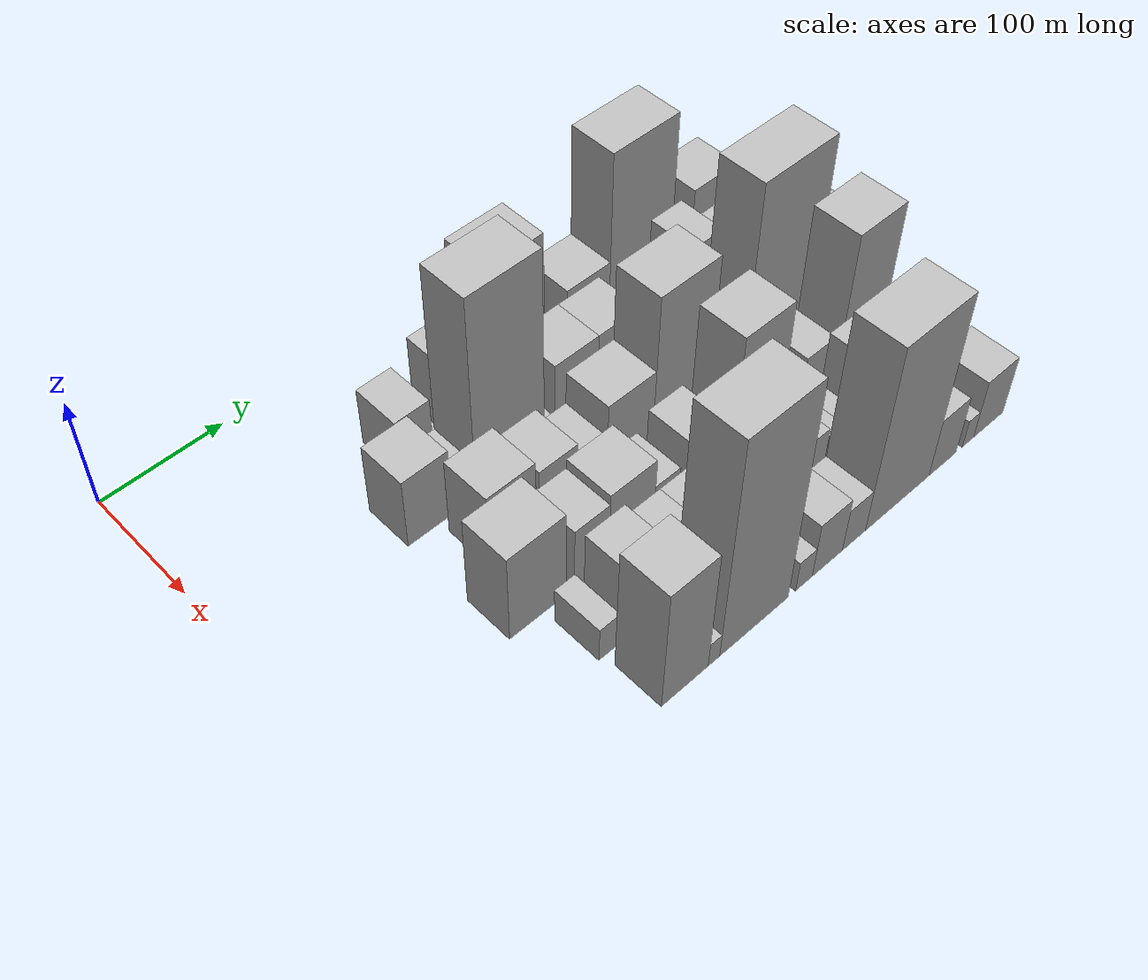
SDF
<sdf version="1.6">
 <world name="default">
  <model name="building_29">
   <static>1</static>
   <pose>100.0000 175.4922 0 0.000000 0.000000 0.000000</pose>
   <link name="link">
    <pose>0 0 27.00 0 0 0</pose>
    <collision name="collision"><geometry><box><size>40.0000 29.8753 54.0000</size></box></geometry></collision>
    <visual name="visual">
     <cast_shadows>0</cast_shadows>
     <geometry><box><size>40.0000 29.8753 54.0000</size></box></geometry>
     <material>
      <script>
       <uri>model://HANNAS_wall/materials/scripts</uri>
       <uri>model://HANNAS_wall/materials/textures</uri>
       <name>vrc/HANNAS_wall</name>
      </script>
     </material>
    </visual>
   </link>
  </model>
  <model name="building_30">
   <static>1</static>
   <pose>100.0000 194.1255 0 0.000000 0.000000 0.000000</pose>
   <link name="link">
    <pose>0 0 9.00 0 0 0</pose>
    <collision name="collision"><geometry><box><size>40.0000 7.3911 18.0000</size></box></geometry></collision>
    <visual name="visual">
     <cast_shadows>0</cast_shadows>
     <geometry><box><size>40.0000 7.3911 18.0000</size></box></geometry>
     <material>
      <script>
       <uri>model://HANNAS_wall/materials/scripts</uri>
       <uri>model://HANNAS_wall/materials/textures</uri>
       <name>vrc/HANNAS_wall</name>
      </script>
     </material>
    </visual>
   </link>
  </model>
  <model name="building_31">
   <static>1</static>
   <pose>100.0000 224.5642 0 0.000000 0.000000 0.000000</pose>
   <link name="link">
    <pose>0 0 36.00 0 0 0</pose>
    <collision name="collision"><geometry><box><size>40.0000 37.4863 72.0000</size></box></geometry></collision>
    <visual name="visual">
     <cast_shadows>0</cast_shadows>
     <geometry><box><size>40.0000 37.4863 72.0000</size></box></geometry>
     <material>
      <script>
       <uri>model://HANNAS_wall/materials/scripts</uri>
       <uri>model://HANNAS_wall/materials/textures</uri>
       <name>vrc/HANNAS_wall</name>
      </script>
     </material>
    </visual>
   </link>
  </model>
  <model name="building_32">
   <static>1</static>
   <pose>100.0000 268.6957 0 0.000000 0.000000 0.000000</pose>
   <link name="link">
    <pose>0 0 69.00 0 0 0</pose>
    <collision name="collision"><geometry><box><size>40.0000 50.7767 138.0000</size></box></geometry></collision>
    <visual name="visual">
     <cast_shadows>0</cast_shadows>
     <geometry><box><size>40.0000 50.7767 138.0000</size></box></geometry>
     <material>
      <script>
       <uri>model://HANNAS_wall/materials/scripts</uri>
       <uri>model://HANNAS_wall/materials/textures</uri>
       <name>vrc/HANNAS_wall</name>
      </script>
     </material>
    </visual>
   </link>
  </model>
  <model name="building_33">
   <static>1</static>
   <pose>100.0000 305.9809 0 0.000000 0.000000 0.000000</pose>
   <link name="link">
    <pose>0 0 12.00 0 0 0</pose>
    <collision name="collision"><geometry><box><size>40.0000 9.7936 24.0000</size></box></geometry></collision>
    <visual name="visual">
     <cast_shadows>0</cast_shadows>
     <geometry><box><size>40.0000 9.7936 24.0000</size></box></geometry>
     <material>
      <script>
       <uri>model://HANNAS_wall/materials/scripts</uri>
       <uri>model://HANNAS_wall/materials/textures</uri>
       <name>vrc/HANNAS_wall</name>
      </script>
     </material>
    </visual>
   </link>
  </model>
  <model name="building_34">
   <static>1</static>
   <pose>100.0000 336.5468 0 0.000000 0.000000 0.000000</pose>
   <link name="link">
    <pose>0 0 34.50 0 0 0</pose>
    <collision name="collision"><geometry><box><size>40.0000 41.3381 69.0000</size></box></geometry></collision>
    <visual name="visual">
     <cast_shadows>0</cast_shadows>
     <geometry><box><size>40.0000 41.3381 69.0000</size></box></geometry>
     <material>
      <script>
       <uri>model://HANNAS_wall/materials/scripts</uri>
       <uri>model://HANNAS_wall/materials/textures</uri>
       <name>vrc/HANNAS_wall</name>
      </script>
     </material>
    </visual>
   </link>
  </model>
  <model name="building_35">
   <static>1</static>
   <pose>100.0000 388.4711 0 0.000000 0.000000 0.000000</pose>
   <link name="link">
    <pose>0 0 84.00 0 0 0</pose>
    <collision name="collision"><geometry><box><size>40.0000 62.5105 168.0000</size></box></geometry></collision>
    <visual name="visual">
     <cast_shadows>0</cast_shadows>
     <geometry><box><size>40.0000 62.5105 168.0000</size></box></geometry>
     <material>
      <script>
       <uri>model://HANNAS_wall/materials/scripts</uri>
       <uri>model://HANNAS_wall/materials/textures</uri>
       <name>vrc/HANNAS_wall</name>
      </script>
     </material>
    </visual>
   </link>
  </model>
  <model name="building_36">
   <static>1</static>
   <pose>100.0000 430.7072 0 0.000000 0.000000 0.000000</pose>
   <link name="link">
    <pose>0 0 21.00 0 0 0</pose>
    <collision name="collision"><geometry><box><size>40.0000 21.9616 42.0000</size></box></geometry></collision>
    <visual name="visual">
     <cast_shadows>0</cast_shadows>
     <geometry><box><size>40.0000 21.9616 42.0000</size></box></geometry>
     <material>
      <script>
       <uri>model://HANNAS_wall/materials/scripts</uri>
       <uri>model://HANNAS_wall/materials/textures</uri>
       <name>vrc/HANNAS_wall</name>
      </script>
     </material>
    </visual>
   </link>
  </model>
  <model name="building_37">
   <static>1</static>
   <pose>100.0000 463.8221 0 0.000000 0.000000 0.000000</pose>
   <link name="link">
    <pose>0 0 42.00 0 0 0</pose>
    <collision name="collision"><geometry><box><size>40.0000 44.2683 84.0000</size></box></geometry></collision>
    <visual name="visual">
     <cast_shadows>0</cast_shadows>
     <geometry><box><size>40.0000 44.2683 84.0000</size></box></geometry>
     <material>
      <script>
       <uri>model://HANNAS_wall/materials/scripts</uri>
       <uri>model://HANNAS_wall/materials/textures</uri>
       <name>vrc/HANNAS_wall</name>
      </script>
     </material>
    </visual>
   </link>
  </model>
  <model name="building_75">
   <static>1</static>
   <pose>149.0000 146.1290 0 0.000000 0.000000 0.000000</pose>
   <link name="link">
    <pose>0 0 33.00 0 0 0</pose>
    <collision name="collision"><geometry><box><size>40.0000 38.1017 66.0000</size></box></geometry></collision>
    <visual name="visual">
     <cast_shadows>0</cast_shadows>
     <geometry><box><size>40.0000 38.1017 66.0000</size></box></geometry>
     <material>
      <script>
       <uri>model://HANNAS_wall/materials/scripts</uri>
       <uri>model://HANNAS_wall/materials/textures</uri>
       <name>vrc/HANNAS_wall</name>
      </script>
     </material>
    </visual>
   </link>
  </model>
  <model name="building_76">
   <static>1</static>
   <pose>149.0000 175.5447 0 0.000000 0.000000 0.000000</pose>
   <link name="link">
    <pose>0 0 18.00 0 0 0</pose>
    <collision name="collision"><geometry><box><size>40.0000 20.7296 36.0000</size></box></geometry></collision>
    <visual name="visual">
     <cast_shadows>0</cast_shadows>
     <geometry><box><size>40.0000 20.7296 36.0000</size></box></geometry>
     <material>
      <script>
       <uri>model://HANNAS_wall/materials/scripts</uri>
       <uri>model://HANNAS_wall/materials/textures</uri>
       <name>vrc/HANNAS_wall</name>
      </script>
     </material>
    </visual>
   </link>
  </model>
  <model name="building_77">
   <static>1</static>
   <pose>149.0000 217.0805 0 0.000000 0.000000 0.000000</pose>
   <link name="link">
    <pose>0 0 94.50 0 0 0</pose>
    <collision name="collision"><geometry><box><size>40.0000 62.3419 189.0000</size></box></geometry></collision>
    <visual name="visual">
     <cast_shadows>0</cast_shadows>
     <geometry><box><size>40.0000 62.3419 189.0000</size></box></geometry>
     <material>
      <script>
       <uri>model://HANNAS_wall/materials/scripts</uri>
       <uri>model://HANNAS_wall/materials/textures</uri>
       <name>vrc/HANNAS_wall</name>
      </script>
     </material>
    </visual>
   </link>
  </model>
  <model name="building_78">
   <static>1</static>
   <pose>149.0000 253.2809 0 0.000000 0.000000 0.000000</pose>
   <link name="link">
    <pose>0 0 12.00 0 0 0</pose>
    <collision name="collision"><geometry><box><size>40.0000 10.0589 24.0000</size></box></geometry></collision>
    <visual name="visual">
     <cast_shadows>0</cast_shadows>
     <geometry><box><size>40.0000 10.0589 24.0000</size></box></geometry>
     <material>
      <script>
       <uri>model://HANNAS_wall/materials/scripts</uri>
       <uri>model://HANNAS_wall/materials/textures</uri>
       <name>vrc/HANNAS_wall</name>
      </script>
     </material>
    </visual>
   </link>
  </model>
  <model name="building_79">
   <static>1</static>
   <pose>149.0000 278.5156 0 0.000000 0.000000 0.000000</pose>
   <link name="link">
    <pose>0 0 37.50 0 0 0</pose>
    <collision name="collision"><geometry><box><size>40.0000 40.4105 75.0000</size></box></geometry></collision>
    <visual name="visual">
     <cast_shadows>0</cast_shadows>
     <geometry><box><size>40.0000 40.4105 75.0000</size></box></geometry>
     <material>
      <script>
       <uri>model://HANNAS_wall/materials/scripts</uri>
       <uri>model://HANNAS_wall/materials/textures</uri>
       <name>vrc/HANNAS_wall</name>
      </script>
     </material>
    </visual>
   </link>
  </model>
  <model name="building_80">
   <static>1</static>
   <pose>149.0000 317.9663 0 0.000000 0.000000 0.000000</pose>
   <link name="link">
    <pose>0 0 37.50 0 0 0</pose>
    <collision name="collision"><geometry><box><size>40.0000 38.4909 75.0000</size></box></geometry></collision>
    <visual name="visual">
     <cast_shadows>0</cast_shadows>
     <geometry><box><size>40.0000 38.4909 75.0000</size></box></geometry>
     <material>
      <script>
       <uri>model://HANNAS_wall/materials/scripts</uri>
       <uri>model://HANNAS_wall/materials/textures</uri>
       <name>vrc/HANNAS_wall</name>
      </script>
     </material>
    </visual>
   </link>
  </model>
  <model name="building_81">
   <static>1</static>
   <pose>149.0000 349.7868 0 0.000000 0.000000 0.000000</pose>
   <link name="link">
    <pose>0 0 15.00 0 0 0</pose>
    <collision name="collision"><geometry><box><size>40.0000 17.1501 30.0000</size></box></geometry></collision>
    <visual name="visual">
     <cast_shadows>0</cast_shadows>
     <geometry><box><size>40.0000 17.1501 30.0000</size></box></geometry>
     <material>
      <script>
       <uri>model://HANNAS_wall/materials/scripts</uri>
       <uri>model://HANNAS_wall/materials/textures</uri>
       <name>vrc/HANNAS_wall</name>
      </script>
     </material>
    </visual>
   </link>
  </model>
  <model name="building_82">
   <static>1</static>
   <pose>149.0000 370.7716 0 0.000000 0.000000 0.000000</pose>
   <link name="link">
    <pose>0 0 22.50 0 0 0</pose>
    <collision name="collision"><geometry><box><size>40.0000 24.8196 45.0000</size></box></geometry></collision>
    <visual name="visual">
     <cast_shadows>0</cast_shadows>
     <geometry><box><size>40.0000 24.8196 45.0000</size></box></geometry>
     <material>
      <script>
       <uri>model://HANNAS_wall/materials/scripts</uri>
       <uri>model://HANNAS_wall/materials/textures</uri>
       <name>vrc/HANNAS_wall</name>
      </script>
     </material>
    </visual>
   </link>
  </model>
  <model name="building_83">
   <static>1</static>
   <pose>149.0000 402.2348 0 0.000000 0.000000 0.000000</pose>
   <link name="link">
    <pose>0 0 48.00 0 0 0</pose>
    <collision name="collision"><geometry><box><size>40.0000 30.1068 96.0000</size></box></geometry></collision>
    <visual name="visual">
     <cast_shadows>0</cast_shadows>
     <geometry><box><size>40.0000 30.1068 96.0000</size></box></geometry>
     <material>
      <script>
       <uri>model://HANNAS_wall/materials/scripts</uri>
       <uri>model://HANNAS_wall/materials/textures</uri>
       <name>vrc/HANNAS_wall</name>
      </script>
     </material>
    </visual>
   </link>
  </model>
  <model name="building_84">
   <static>1</static>
   <pose>149.0000 436.6969 0 0.000000 0.000000 0.000000</pose>
   <link name="link">
    <pose>0 0 34.50 0 0 0</pose>
    <collision name="collision"><geometry><box><size>40.0000 38.8174 69.0000</size></box></geometry></collision>
    <visual name="visual">
     <cast_shadows>0</cast_shadows>
     <geometry><box><size>40.0000 38.8174 69.0000</size></box></geometry>
     <material>
      <script>
       <uri>model://HANNAS_wall/materials/scripts</uri>
       <uri>model://HANNAS_wall/materials/textures</uri>
       <name>vrc/HANNAS_wall</name>
      </script>
     </material>
    </visual>
   </link>
  </model>
  <model name="building_85">
   <static>1</static>
   <pose>149.0000 477.1022 0 0.000000 0.000000 0.000000</pose>
   <link name="link">
    <pose>0 0 58.50 0 0 0</pose>
    <collision name="collision"><geometry><box><size>40.0000 41.9933 117.0000</size></box></geometry></collision>
    <visual name="visual">
     <cast_shadows>0</cast_shadows>
     <geometry><box><size>40.0000 41.9933 117.0000</size></box></geometry>
     <material>
      <script>
       <uri>model://HANNAS_wall/materials/scripts</uri>
       <uri>model://HANNAS_wall/materials/textures</uri>
       <name>vrc/HANNAS_wall</name>
      </script>
     </material>
    </visual>
   </link>
  </model>
  <model name="building_130">
   <static>1</static>
   <pose>198.0000 175.0927 0 0.000000 0.000000 0.000000</pose>
   <link name="link">
    <pose>0 0 36.00 0 0 0</pose>
    <collision name="collision"><geometry><box><size>40.0000 41.2063 72.0000</size></box></geometry></collision>
    <visual name="visual">
     <cast_shadows>0</cast_shadows>
     <geometry><box><size>40.0000 41.2063 72.0000</size></box></geometry>
     <material>
      <script>
       <uri>model://HANNAS_wall/materials/scripts</uri>
       <uri>model://HANNAS_wall/materials/textures</uri>
       <name>vrc/HANNAS_wall</name>
      </script>
     </material>
    </visual>
   </link>
  </model>
  <model name="building_131">
   <static>1</static>
   <pose>198.0000 215.7154 0 0.000000 0.000000 0.000000</pose>
   <link name="link">
    <pose>0 0 30.00 0 0 0</pose>
    <collision name="collision"><geometry><box><size>40.0000 34.0390 60.0000</size></box></geometry></collision>
    <visual name="visual">
     <cast_shadows>0</cast_shadows>
     <geometry><box><size>40.0000 34.0390 60.0000</size></box></geometry>
     <material>
      <script>
       <uri>model://HANNAS_wall/materials/scripts</uri>
       <uri>model://HANNAS_wall/materials/textures</uri>
       <name>vrc/HANNAS_wall</name>
      </script>
     </material>
    </visual>
   </link>
  </model>
  <model name="building_132">
   <static>1</static>
   <pose>198.0000 246.1896 0 0.000000 0.000000 0.000000</pose>
   <link name="link">
    <pose>0 0 22.50 0 0 0</pose>
    <collision name="collision"><geometry><box><size>40.0000 26.9094 45.0000</size></box></geometry></collision>
    <visual name="visual">
     <cast_shadows>0</cast_shadows>
     <geometry><box><size>40.0000 26.9094 45.0000</size></box></geometry>
     <material>
      <script>
       <uri>model://HANNAS_wall/materials/scripts</uri>
       <uri>model://HANNAS_wall/materials/textures</uri>
       <name>vrc/HANNAS_wall</name>
      </script>
     </material>
    </visual>
   </link>
  </model>
  <model name="building_133">
   <static>1</static>
   <pose>198.0000 281.5165 0 0.000000 0.000000 0.000000</pose>
   <link name="link">
    <pose>0 0 37.50 0 0 0</pose>
    <collision name="collision"><geometry><box><size>40.0000 43.7444 75.0000</size></box></geometry></collision>
    <visual name="visual">
     <cast_shadows>0</cast_shadows>
     <geometry><box><size>40.0000 43.7444 75.0000</size></box></geometry>
     <material>
      <script>
       <uri>model://HANNAS_wall/materials/scripts</uri>
       <uri>model://HANNAS_wall/materials/textures</uri>
       <name>vrc/HANNAS_wall</name>
      </script>
     </material>
    </visual>
   </link>
  </model>
  <model name="building_134">
   <static>1</static>
   <pose>198.0000 331.0666 0 0.000000 0.000000 0.000000</pose>
   <link name="link">
    <pose>0 0 72.00 0 0 0</pose>
    <collision name="collision"><geometry><box><size>40.0000 55.3558 144.0000</size></box></geometry></collision>
    <visual name="visual">
     <cast_shadows>0</cast_shadows>
     <geometry><box><size>40.0000 55.3558 144.0000</size></box></geometry>
     <material>
      <script>
       <uri>model://HANNAS_wall/materials/scripts</uri>
       <uri>model://HANNAS_wall/materials/textures</uri>
       <name>vrc/HANNAS_wall</name>
      </script>
     </material>
    </visual>
   </link>
  </model>
  <model name="building_135">
   <static>1</static>
   <pose>198.0000 381.5912 0 0.000000 0.000000 0.000000</pose>
   <link name="link">
    <pose>0 0 24.00 0 0 0</pose>
    <collision name="collision"><geometry><box><size>40.0000 25.6934 48.0000</size></box></geometry></collision>
    <visual name="visual">
     <cast_shadows>0</cast_shadows>
     <geometry><box><size>40.0000 25.6934 48.0000</size></box></geometry>
     <material>
      <script>
       <uri>model://HANNAS_wall/materials/scripts</uri>
       <uri>model://HANNAS_wall/materials/textures</uri>
       <name>vrc/HANNAS_wall</name>
      </script>
     </material>
    </visual>
   </link>
  </model>
  <model name="building_136">
   <static>1</static>
   <pose>198.0000 430.0439 0 0.000000 0.000000 0.000000</pose>
   <link name="link">
    <pose>0 0 91.50 0 0 0</pose>
    <collision name="collision"><geometry><box><size>40.0000 71.2120 183.0000</size></box></geometry></collision>
    <visual name="visual">
     <cast_shadows>0</cast_shadows>
     <geometry><box><size>40.0000 71.2120 183.0000</size></box></geometry>
     <material>
      <script>
       <uri>model://HANNAS_wall/materials/scripts</uri>
       <uri>model://HANNAS_wall/materials/textures</uri>
       <name>vrc/HANNAS_wall</name>
      </script>
     </material>
    </visual>
   </link>
  </model>
  <model name="building_137">
   <static>1</static>
   <pose>198.0000 479.1458 0 0.000000 0.000000 0.000000</pose>
   <link name="link">
    <pose>0 0 7.50 0 0 0</pose>
    <collision name="collision"><geometry><box><size>40.0000 6.9918 15.0000</size></box></geometry></collision>
    <visual name="visual">
     <cast_shadows>0</cast_shadows>
     <geometry><box><size>40.0000 6.9918 15.0000</size></box></geometry>
     <material>
      <script>
       <uri>model://HANNAS_wall/materials/scripts</uri>
       <uri>model://HANNAS_wall/materials/textures</uri>
       <name>vrc/HANNAS_wall</name>
      </script>
     </material>
    </visual>
   </link>
  </model>
  <model name="building_138">
   <static>1</static>
   <pose>198.0000 502.6794 0 0.000000 0.000000 0.000000</pose>
   <link name="link">
    <pose>0 0 37.50 0 0 0</pose>
    <collision name="collision"><geometry><box><size>40.0000 40.0754 75.0000</size></box></geometry></collision>
    <visual name="visual">
     <cast_shadows>0</cast_shadows>
     <geometry><box><size>40.0000 40.0754 75.0000</size></box></geometry>
     <material>
      <script>
       <uri>model://HANNAS_wall/materials/scripts</uri>
       <uri>model://HANNAS_wall/materials/textures</uri>
       <name>vrc/HANNAS_wall</name>
      </script>
     </material>
    </visual>
   </link>
  </model>
  <model name="building_180">
   <static>1</static>
   <pose>247.0000 151.8714 0 0.000000 0.000000 0.000000</pose>
   <link name="link">
    <pose>0 0 42.00 0 0 0</pose>
    <collision name="collision"><geometry><box><size>40.0000 48.5519 84.0000</size></box></geometry></collision>
    <visual name="visual">
     <cast_shadows>0</cast_shadows>
     <geometry><box><size>40.0000 48.5519 84.0000</size></box></geometry>
     <material>
      <script>
       <uri>model://HANNAS_wall/materials/scripts</uri>
       <uri>model://HANNAS_wall/materials/textures</uri>
       <name>vrc/HANNAS_wall</name>
      </script>
     </material>
    </visual>
   </link>
  </model>
  <model name="building_181">
   <static>1</static>
   <pose>247.0000 198.4204 0 0.000000 0.000000 0.000000</pose>
   <link name="link">
    <pose>0 0 30.00 0 0 0</pose>
    <collision name="collision"><geometry><box><size>40.0000 30.5460 60.0000</size></box></geometry></collision>
    <visual name="visual">
     <cast_shadows>0</cast_shadows>
     <geometry><box><size>40.0000 30.5460 60.0000</size></box></geometry>
     <material>
      <script>
       <uri>model://HANNAS_wall/materials/scripts</uri>
       <uri>model://HANNAS_wall/materials/textures</uri>
       <name>vrc/HANNAS_wall</name>
      </script>
     </material>
    </visual>
   </link>
  </model>
  <model name="building_182">
   <static>1</static>
   <pose>247.0000 234.1974 0 0.000000 0.000000 0.000000</pose>
   <link name="link">
    <pose>0 0 34.50 0 0 0</pose>
    <collision name="collision"><geometry><box><size>40.0000 41.0079 69.0000</size></box></geometry></collision>
    <visual name="visual">
     <cast_shadows>0</cast_shadows>
     <geometry><box><size>40.0000 41.0079 69.0000</size></box></geometry>
     <material>
      <script>
       <uri>model://HANNAS_wall/materials/scripts</uri>
       <uri>model://HANNAS_wall/materials/textures</uri>
       <name>vrc/HANNAS_wall</name>
      </script>
     </material>
    </visual>
   </link>
  </model>
  <model name="building_183">
   <static>1</static>
   <pose>247.0000 266.2529 0 0.000000 0.000000 0.000000</pose>
   <link name="link">
    <pose>0 0 21.00 0 0 0</pose>
    <collision name="collision"><geometry><box><size>40.0000 23.1032 42.0000</size></box></geometry></collision>
    <visual name="visual">
     <cast_shadows>0</cast_shadows>
     <geometry><box><size>40.0000 23.1032 42.0000</size></box></geometry>
     <material>
      <script>
       <uri>model://HANNAS_wall/materials/scripts</uri>
       <uri>model://HANNAS_wall/materials/textures</uri>
       <name>vrc/HANNAS_wall</name>
      </script>
     </material>
    </visual>
   </link>
  </model>
  <model name="building_184">
   <static>1</static>
   <pose>247.0000 303.8590 0 0.000000 0.000000 0.000000</pose>
   <link name="link">
    <pose>0 0 28.50 0 0 0</pose>
    <collision name="collision"><geometry><box><size>40.0000 32.1091 57.0000</size></box></geometry></collision>
    <visual name="visual">
     <cast_shadows>0</cast_shadows>
     <geometry><box><size>40.0000 32.1091 57.0000</size></box></geometry>
     <material>
      <script>
       <uri>model://HANNAS_wall/materials/scripts</uri>
       <uri>model://HANNAS_wall/materials/textures</uri>
       <name>vrc/HANNAS_wall</name>
      </script>
     </material>
    </visual>
   </link>
  </model>
  <model name="building_185">
   <static>1</static>
   <pose>247.0000 353.5766 0 0.000000 0.000000 0.000000</pose>
   <link name="link">
    <pose>0 0 63.00 0 0 0</pose>
    <collision name="collision"><geometry><box><size>40.0000 47.3261 126.0000</size></box></geometry></collision>
    <visual name="visual">
     <cast_shadows>0</cast_shadows>
     <geometry><box><size>40.0000 47.3261 126.0000</size></box></geometry>
     <material>
      <script>
       <uri>model://HANNAS_wall/materials/scripts</uri>
       <uri>model://HANNAS_wall/materials/textures</uri>
       <name>vrc/HANNAS_wall</name>
      </script>
     </material>
    </visual>
   </link>
  </model>
  <model name="building_186">
   <static>1</static>
   <pose>247.0000 391.2234 0 0.000000 0.000000 0.000000</pose>
   <link name="link">
    <pose>0 0 12.00 0 0 0</pose>
    <collision name="collision"><geometry><box><size>40.0000 9.9675 24.0000</size></box></geometry></collision>
    <visual name="visual">
     <cast_shadows>0</cast_shadows>
     <geometry><box><size>40.0000 9.9675 24.0000</size></box></geometry>
     <material>
      <script>
       <uri>model://HANNAS_wall/materials/scripts</uri>
       <uri>model://HANNAS_wall/materials/textures</uri>
       <name>vrc/HANNAS_wall</name>
      </script>
     </material>
    </visual>
   </link>
  </model>
  <model name="building_187">
   <static>1</static>
   <pose>247.0000 414.9449 0 0.000000 0.000000 0.000000</pose>
   <link name="link">
    <pose>0 0 27.00 0 0 0</pose>
    <collision name="collision"><geometry><box><size>40.0000 29.4754 54.0000</size></box></geometry></collision>
    <visual name="visual">
     <cast_shadows>0</cast_shadows>
     <geometry><box><size>40.0000 29.4754 54.0000</size></box></geometry>
     <material>
      <script>
       <uri>model://HANNAS_wall/materials/scripts</uri>
       <uri>model://HANNAS_wall/materials/textures</uri>
       <name>vrc/HANNAS_wall</name>
      </script>
     </material>
    </visual>
   </link>
  </model>
  <model name="building_188">
   <static>1</static>
   <pose>247.0000 433.3512 0 0.000000 0.000000 0.000000</pose>
   <link name="link">
    <pose>0 0 7.50 0 0 0</pose>
    <collision name="collision"><geometry><box><size>40.0000 7.3372 15.0000</size></box></geometry></collision>
    <visual name="visual">
     <cast_shadows>0</cast_shadows>
     <geometry><box><size>40.0000 7.3372 15.0000</size></box></geometry>
     <material>
      <script>
       <uri>model://HANNAS_wall/materials/scripts</uri>
       <uri>model://HANNAS_wall/materials/textures</uri>
       <name>vrc/HANNAS_wall</name>
      </script>
     </material>
    </visual>
   </link>
  </model>
  <model name="building_189">
   <static>1</static>
   <pose>247.0000 460.8622 0 0.000000 0.000000 0.000000</pose>
   <link name="link">
    <pose>0 0 72.00 0 0 0</pose>
    <collision name="collision"><geometry><box><size>40.0000 47.6849 144.0000</size></box></geometry></collision>
    <visual name="visual">
     <cast_shadows>0</cast_shadows>
     <geometry><box><size>40.0000 47.6849 144.0000</size></box></geometry>
     <material>
      <script>
       <uri>model://HANNAS_wall/materials/scripts</uri>
       <uri>model://HANNAS_wall/materials/textures</uri>
       <name>vrc/HANNAS_wall</name>
      </script>
     </material>
    </visual>
   </link>
  </model>
  <model name="building_229">
   <static>1</static>
   <pose>296.0000 166.2410 0 0.000000 0.000000 0.000000</pose>
   <link name="link">
    <pose>0 0 16.50 0 0 0</pose>
    <collision name="collision"><geometry><box><size>40.0000 17.5847 33.0000</size></box></geometry></collision>
    <visual name="visual">
     <cast_shadows>0</cast_shadows>
     <geometry><box><size>40.0000 17.5847 33.0000</size></box></geometry>
     <material>
      <script>
       <uri>model://HANNAS_wall/materials/scripts</uri>
       <uri>model://HANNAS_wall/materials/textures</uri>
       <name>vrc/HANNAS_wall</name>
      </script>
     </material>
    </visual>
   </link>
  </model>
  <model name="building_230">
   <static>1</static>
   <pose>296.0000 200.2010 0 0.000000 0.000000 0.000000</pose>
   <link name="link">
    <pose>0 0 33.00 0 0 0</pose>
    <collision name="collision"><geometry><box><size>40.0000 34.3352 66.0000</size></box></geometry></collision>
    <visual name="visual">
     <cast_shadows>0</cast_shadows>
     <geometry><box><size>40.0000 34.3352 66.0000</size></box></geometry>
     <material>
      <script>
       <uri>model://HANNAS_wall/materials/scripts</uri>
       <uri>model://HANNAS_wall/materials/textures</uri>
       <name>vrc/HANNAS_wall</name>
      </script>
     </material>
    </visual>
   </link>
  </model>
  <model name="building_231">
   <static>1</static>
   <pose>296.0000 233.0119 0 0.000000 0.000000 0.000000</pose>
   <link name="link">
    <pose>0 0 27.00 0 0 0</pose>
    <collision name="collision"><geometry><box><size>40.0000 31.2866 54.0000</size></box></geometry></collision>
    <visual name="visual">
     <cast_shadows>0</cast_shadows>
     <geometry><box><size>40.0000 31.2866 54.0000</size></box></geometry>
     <material>
      <script>
       <uri>model://HANNAS_wall/materials/scripts</uri>
       <uri>model://HANNAS_wall/materials/textures</uri>
       <name>vrc/HANNAS_wall</name>
      </script>
     </material>
    </visual>
   </link>
  </model>
  <model name="building_232">
   <static>1</static>
   <pose>296.0000 263.9653 0 0.000000 0.000000 0.000000</pose>
   <link name="link">
    <pose>0 0 27.00 0 0 0</pose>
    <collision name="collision"><geometry><box><size>40.0000 30.6203 54.0000</size></box></geometry></collision>
    <visual name="visual">
     <cast_shadows>0</cast_shadows>
     <geometry><box><size>40.0000 30.6203 54.0000</size></box></geometry>
     <material>
      <script>
       <uri>model://HANNAS_wall/materials/scripts</uri>
       <uri>model://HANNAS_wall/materials/textures</uri>
       <name>vrc/HANNAS_wall</name>
      </script>
     </material>
    </visual>
   </link>
  </model>
  <model name="building_233">
   <static>1</static>
   <pose>296.0000 293.6484 0 0.000000 0.000000 0.000000</pose>
   <link name="link">
    <pose>0 0 13.50 0 0 0</pose>
    <collision name="collision"><geometry><box><size>40.0000 12.7459 27.0000</size></box></geometry></collision>
    <visual name="visual">
     <cast_shadows>0</cast_shadows>
     <geometry><box><size>40.0000 12.7459 27.0000</size></box></geometry>
     <material>
      <script>
       <uri>model://HANNAS_wall/materials/scripts</uri>
       <uri>model://HANNAS_wall/materials/textures</uri>
       <name>vrc/HANNAS_wall</name>
      </script>
     </material>
    </visual>
   </link>
  </model>
  <model name="building_234">
   <static>1</static>
   <pose>296.0000 324.5203 0 0.000000 0.000000 0.000000</pose>
   <link name="link">
    <pose>0 0 27.00 0 0 0</pose>
    <collision name="collision"><geometry><box><size>40.0000 30.9978 54.0000</size></box></geometry></collision>
    <visual name="visual">
     <cast_shadows>0</cast_shadows>
     <geometry><box><size>40.0000 30.9978 54.0000</size></box></geometry>
     <material>
      <script>
       <uri>model://HANNAS_wall/materials/scripts</uri>
       <uri>model://HANNAS_wall/materials/textures</uri>
       <name>vrc/HANNAS_wall</name>
      </script>
     </material>
    </visual>
   </link>
  </model>
  <model name="building_235">
   <static>1</static>
   <pose>296.0000 353.2343 0 0.000000 0.000000 0.000000</pose>
   <link name="link">
    <pose>0 0 25.50 0 0 0</pose>
    <collision name="collision"><geometry><box><size>40.0000 26.4303 51.0000</size></box></geometry></collision>
    <visual name="visual">
     <cast_shadows>0</cast_shadows>
     <geometry><box><size>40.0000 26.4303 51.0000</size></box></geometry>
     <material>
      <script>
       <uri>model://HANNAS_wall/materials/scripts</uri>
       <uri>model://HANNAS_wall/materials/textures</uri>
       <name>vrc/HANNAS_wall</name>
      </script>
     </material>
    </visual>
   </link>
  </model>
  <model name="building_236">
   <static>1</static>
   <pose>296.0000 384.0316 0 0.000000 0.000000 0.000000</pose>
   <link name="link">
    <pose>0 0 15.00 0 0 0</pose>
    <collision name="collision"><geometry><box><size>40.0000 15.1642 30.0000</size></box></geometry></collision>
    <visual name="visual">
     <cast_shadows>0</cast_shadows>
     <geometry><box><size>40.0000 15.1642 30.0000</size></box></geometry>
     <material>
      <script>
       <uri>model://HANNAS_wall/materials/scripts</uri>
       <uri>model://HANNAS_wall/materials/textures</uri>
       <name>vrc/HANNAS_wall</name>
      </script>
     </material>
    </visual>
   </link>
  </model>
  <model name="building_237">
   <static>1</static>
   <pose>296.0000 399.5666 0 0.000000 0.000000 0.000000</pose>
   <link name="link">
    <pose>0 0 15.00 0 0 0</pose>
    <collision name="collision"><geometry><box><size>40.0000 15.9059 30.0000</size></box></geometry></collision>
    <visual name="visual">
     <cast_shadows>0</cast_shadows>
     <geometry><box><size>40.0000 15.9059 30.0000</size></box></geometry>
     <material>
      <script>
       <uri>model://HANNAS_wall/materials/scripts</uri>
       <uri>model://HANNAS_wall/materials/textures</uri>
       <name>vrc/HANNAS_wall</name>
      </script>
     </material>
    </visual>
   </link>
  </model>
  <model name="building_238">
   <static>1</static>
   <pose>296.0000 431.6051 0 0.000000 0.000000 0.000000</pose>
   <link name="link">
    <pose>0 0 40.50 0 0 0</pose>
    <collision name="collision"><geometry><box><size>40.0000 48.1711 81.0000</size></box></geometry></collision>
    <visual name="visual">
     <cast_shadows>0</cast_shadows>
     <geometry><box><size>40.0000 48.1711 81.0000</size></box></geometry>
     <material>
      <script>
       <uri>model://HANNAS_wall/materials/scripts</uri>
       <uri>model://HANNAS_wall/materials/textures</uri>
       <name>vrc/HANNAS_wall</name>
      </script>
     </material>
    </visual>
   </link>
  </model>
  <model name="building_239">
   <static>1</static>
   <pose>296.0000 470.2494 0 0.000000 0.000000 0.000000</pose>
   <link name="link">
    <pose>0 0 27.00 0 0 0</pose>
    <collision name="collision"><geometry><box><size>40.0000 29.1175 54.0000</size></box></geometry></collision>
    <visual name="visual">
     <cast_shadows>0</cast_shadows>
     <geometry><box><size>40.0000 29.1175 54.0000</size></box></geometry>
     <material>
      <script>
       <uri>model://HANNAS_wall/materials/scripts</uri>
       <uri>model://HANNAS_wall/materials/textures</uri>
       <name>vrc/HANNAS_wall</name>
      </script>
     </material>
    </visual>
   </link>
  </model>
  <model name="building_279">
   <static>1</static>
   <pose>345.0000 182.7899 0 0.000000 0.000000 0.000000</pose>
   <link name="link">
    <pose>0 0 58.50 0 0 0</pose>
    <collision name="collision"><geometry><box><size>40.0000 40.8790 117.0000</size></box></geometry></collision>
    <visual name="visual">
     <cast_shadows>0</cast_shadows>
     <geometry><box><size>40.0000 40.8790 117.0000</size></box></geometry>
     <material>
      <script>
       <uri>model://HANNAS_wall/materials/scripts</uri>
       <uri>model://HANNAS_wall/materials/textures</uri>
       <name>vrc/HANNAS_wall</name>
      </script>
     </material>
    </visual>
   </link>
  </model>
  <model name="building_280">
   <static>1</static>
   <pose>345.0000 208.4263 0 0.000000 0.000000 0.000000</pose>
   <link name="link">
    <pose>0 0 12.00 0 0 0</pose>
    <collision name="collision"><geometry><box><size>40.0000 10.3938 24.0000</size></box></geometry></collision>
    <visual name="visual">
     <cast_shadows>0</cast_shadows>
     <geometry><box><size>40.0000 10.3938 24.0000</size></box></geometry>
     <material>
      <script>
       <uri>model://HANNAS_wall/materials/scripts</uri>
       <uri>model://HANNAS_wall/materials/textures</uri>
       <name>vrc/HANNAS_wall</name>
      </script>
     </material>
    </visual>
   </link>
  </model>
  <model name="building_281">
   <static>1</static>
   <pose>345.0000 245.4416 0 0.000000 0.000000 0.000000</pose>
   <link name="link">
    <pose>0 0 105.00 0 0 0</pose>
    <collision name="collision"><geometry><box><size>40.0000 63.6369 210.0000</size></box></geometry></collision>
    <visual name="visual">
     <cast_shadows>0</cast_shadows>
     <geometry><box><size>40.0000 63.6369 210.0000</size></box></geometry>
     <material>
      <script>
       <uri>model://HANNAS_wall/materials/scripts</uri>
       <uri>model://HANNAS_wall/materials/textures</uri>
       <name>vrc/HANNAS_wall</name>
      </script>
     </material>
    </visual>
   </link>
  </model>
  <model name="building_282">
   <static>1</static>
   <pose>345.0000 292.3107 0 0.000000 0.000000 0.000000</pose>
   <link name="link">
    <pose>0 0 15.00 0 0 0</pose>
    <collision name="collision"><geometry><box><size>40.0000 16.1014 30.0000</size></box></geometry></collision>
    <visual name="visual">
     <cast_shadows>0</cast_shadows>
     <geometry><box><size>40.0000 16.1014 30.0000</size></box></geometry>
     <material>
      <script>
       <uri>model://HANNAS_wall/materials/scripts</uri>
       <uri>model://HANNAS_wall/materials/textures</uri>
       <name>vrc/HANNAS_wall</name>
      </script>
     </material>
    </visual>
   </link>
  </model>
  <model name="building_283">
   <static>1</static>
   <pose>345.0000 315.2668 0 0.000000 0.000000 0.000000</pose>
   <link name="link">
    <pose>0 0 27.00 0 0 0</pose>
    <collision name="collision"><geometry><box><size>40.0000 29.8107 54.0000</size></box></geometry></collision>
    <visual name="visual">
     <cast_shadows>0</cast_shadows>
     <geometry><box><size>40.0000 29.8107 54.0000</size></box></geometry>
     <material>
      <script>
       <uri>model://HANNAS_wall/materials/scripts</uri>
       <uri>model://HANNAS_wall/materials/textures</uri>
       <name>vrc/HANNAS_wall</name>
      </script>
     </material>
    </visual>
   </link>
  </model>
  <model name="building_284">
   <static>1</static>
   <pose>345.0000 341.7778 0 0.000000 0.000000 0.000000</pose>
   <link name="link">
    <pose>0 0 21.00 0 0 0</pose>
    <collision name="collision"><geometry><box><size>40.0000 23.2115 42.0000</size></box></geometry></collision>
    <visual name="visual">
     <cast_shadows>0</cast_shadows>
     <geometry><box><size>40.0000 23.2115 42.0000</size></box></geometry>
     <material>
      <script>
       <uri>model://HANNAS_wall/materials/scripts</uri>
       <uri>model://HANNAS_wall/materials/textures</uri>
       <name>vrc/HANNAS_wall</name>
      </script>
     </material>
    </visual>
   </link>
  </model>
  <model name="building_285">
   <static>1</static>
   <pose>345.0000 386.6816 0 0.000000 0.000000 0.000000</pose>
   <link name="link">
    <pose>0 0 88.50 0 0 0</pose>
    <collision name="collision"><geometry><box><size>40.0000 66.5961 177.0000</size></box></geometry></collision>
    <visual name="visual">
     <cast_shadows>0</cast_shadows>
     <geometry><box><size>40.0000 66.5961 177.0000</size></box></geometry>
     <material>
      <script>
       <uri>model://HANNAS_wall/materials/scripts</uri>
       <uri>model://HANNAS_wall/materials/textures</uri>
       <name>vrc/HANNAS_wall</name>
      </script>
     </material>
    </visual>
   </link>
  </model>
  <model name="building_286">
   <static>1</static>
   <pose>345.0000 434.7944 0 0.000000 0.000000 0.000000</pose>
   <link name="link">
    <pose>0 0 28.50 0 0 0</pose>
    <collision name="collision"><geometry><box><size>40.0000 29.6294 57.0000</size></box></geometry></collision>
    <visual name="visual">
     <cast_shadows>0</cast_shadows>
     <geometry><box><size>40.0000 29.6294 57.0000</size></box></geometry>
     <material>
      <script>
       <uri>model://HANNAS_wall/materials/scripts</uri>
       <uri>model://HANNAS_wall/materials/textures</uri>
       <name>vrc/HANNAS_wall</name>
      </script>
     </material>
    </visual>
   </link>
  </model>
  <model name="building_287">
   <static>1</static>
   <pose>345.0000 462.7942 0 0.000000 0.000000 0.000000</pose>
   <link name="link">
    <pose>0 0 13.50 0 0 0</pose>
    <collision name="collision"><geometry><box><size>40.0000 12.3703 27.0000</size></box></geometry></collision>
    <visual name="visual">
     <cast_shadows>0</cast_shadows>
     <geometry><box><size>40.0000 12.3703 27.0000</size></box></geometry>
     <material>
      <script>
       <uri>model://HANNAS_wall/materials/scripts</uri>
       <uri>model://HANNAS_wall/materials/textures</uri>
       <name>vrc/HANNAS_wall</name>
      </script>
     </material>
    </visual>
   </link>
  </model>
  <model name="building_288">
   <static>1</static>
   <pose>345.0000 485.7580 0 0.000000 0.000000 0.000000</pose>
   <link name="link">
    <pose>0 0 28.50 0 0 0</pose>
    <collision name="collision"><geometry><box><size>40.0000 33.5573 57.0000</size></box></geometry></collision>
    <visual name="visual">
     <cast_shadows>0</cast_shadows>
     <geometry><box><size>40.0000 33.5573 57.0000</size></box></geometry>
     <material>
      <script>
       <uri>model://HANNAS_wall/materials/scripts</uri>
       <uri>model://HANNAS_wall/materials/textures</uri>
       <name>vrc/HANNAS_wall</name>
      </script>
     </material>
    </visual>
   </link>
  </model>
 </world>
</sdf>
